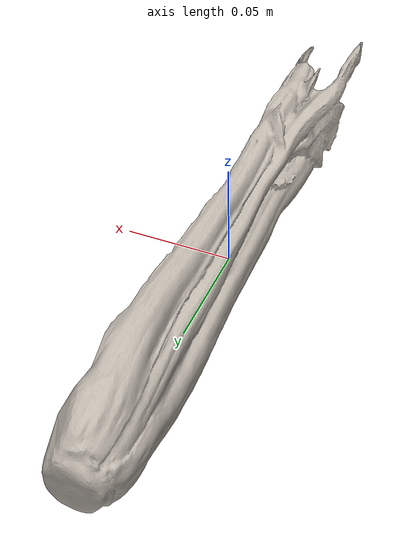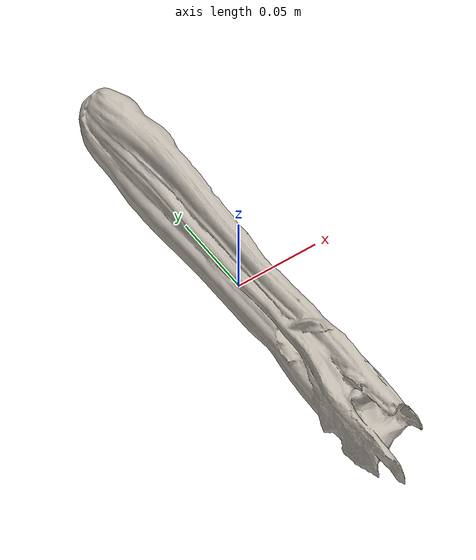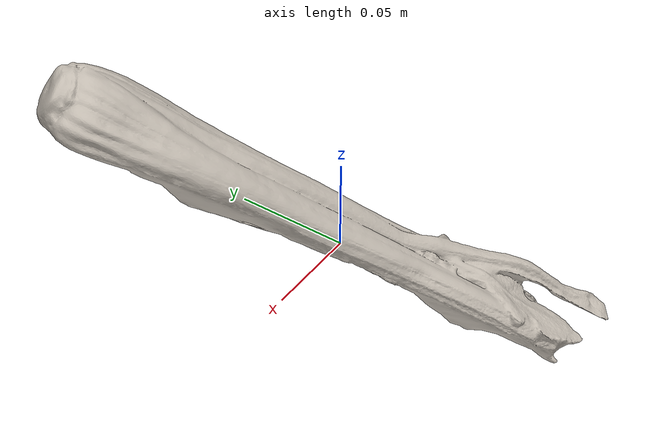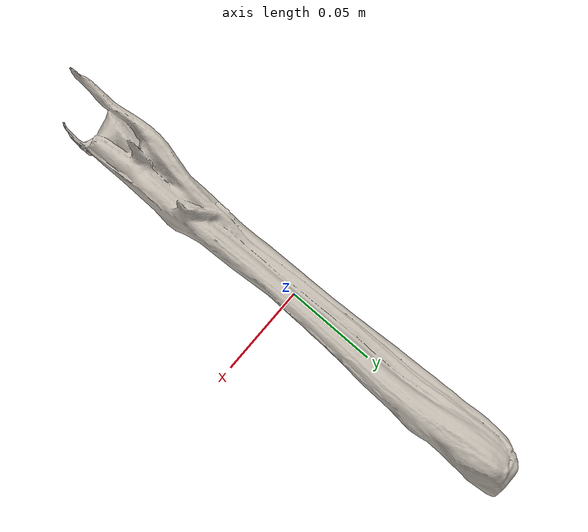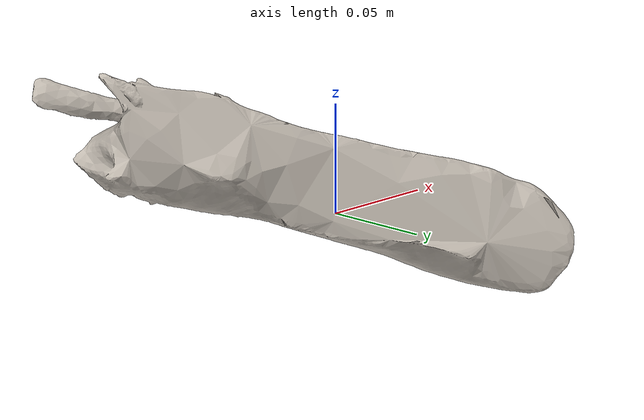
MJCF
<mujoco model="rod_balance">
  <asset>
    <!-- Assert for the celery -->
    <mesh file="meshes/celery.obj" name="celery_mesh" scale="0.8 0.7 0.8"/>

    <texture file="../textures/celery.png" name="tex-celery" type="2d"/>
    <material name="celery" reflectance="0.7" texrepeat="15 15" texture="tex-celery" texuniform="true"/>

  </asset>
  <worldbody>
    <body>
        <body name="object">
        <geom pos="0.015 0 0.02"  quat="0.7071068 0 0 0.7071068"  mesh="celery_mesh" type="mesh"  material="celery" conaffinity="0" contype="0" group="1"/>

        <geom pos="0 0 0" size="0.018 0.101 0.018" type="box" solimp="0.998 0.998 0.001"
        solref="-10000 -15" density="50" friction="0.013 0.3 0.1" rgba="0 0 1 0." group="0" condim="6"  />

          <body name="rod_com">
              <geom pos="0 0 0" size="0.018 0.018 0.018" type="box" solimp="0.998 0.998 0.001"
              solref="-10000 -15" density="15000" friction="0.013 0.3 0.1" rgba="1 1 0 0." group="0" condim="6"  />
          </body>

      </body>
        <option>
          <flag multiccd="enable"/>
        </option>
      <site rgba="0 0 0 0" size="0.005" pos="0 0 -0.06" name="bottom_site"/>
      <site rgba="0 0 0 0" size="0.005" pos="0 0 0.04" name="top_site"/>
      <site rgba="0 0 0 0" size="0.005" pos="0.025 0.025 0" name="horizontal_radius_site"/>
    </body>
  </worldbody>
</mujoco>
